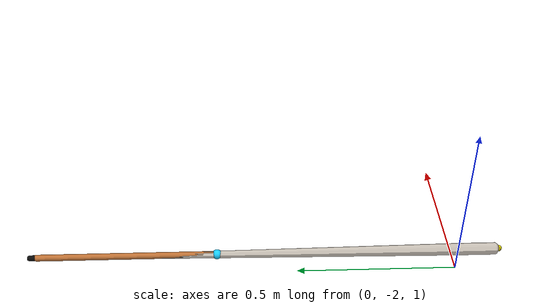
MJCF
<mujoco>
  <asset>
    <material name="dynamic_cue_wood_mat" rgba="0.72 0.43 0.20 1"/>
    <material name="dynamic_cue_tip_mat" rgba="0.03 0.03 0.028 1"/>
    <texture name="sketchfab_cue_texture" type="2d" file="../../TriWorlds-snooker/assets/cue/sketchfab_pool_table_traditional/cue_mat_baseColor.png"/>
    <material name="sketchfab_cue_mat" texture="sketchfab_cue_texture" rgba="1 1 1 1" reflectance="0.08"/>
    <mesh name="sketchfab_cue_visual" file="../assets/cue/sketchfab_pool_table_traditional/pool_cue_visual_local.obj"/>
  </asset>

  <worldbody>
    <body name="cue_body" pos="0 -1.3996 1.0785" quat="0.7071067812 0 0 0.7071067812">
      <!-- Cue local +X points from butt to tip. Left hand site is closer to
           the cue ball; right hand site is farther back for the power stroke. -->
      <freejoint name="cue_free"/>
      <geom name="cue_visual_mesh" type="mesh" mesh="sketchfab_cue_visual"
            material="sketchfab_cue_mat" contype="0" conaffinity="0" density="0"/>
      <geom name="cue_shaft" type="capsule" fromto="-0.725 0 0 0.705 0 0" size="0.010"
            mass="0.50" material="dynamic_cue_wood_mat"
            contype="0" conaffinity="0" condim="3"
            friction="0 0 0"/>
      <geom name="cue_tip" type="capsule" fromto="0.705 0 0 0.725 0 0" size="0.009"
            mass="0.03" material="dynamic_cue_tip_mat"
            contype="1" conaffinity="1" condim="6" priority="3"
            friction="0.35 0.008 0.0001" solref="-5e6 -300"
            solimp="0.95 0.99 0.001"/>
      <site name="cue_tip_site" pos="0.725 0 0" size="0.006" rgba="0 1 0 1"/>
      <site name="cue_axis_site" pos="0 0 0" size="0.004" rgba="0 0.4 1 1"/>
      <site name="cue_left_grip_site" pos="0.150333 0 0" size="0.015" rgba="0.1 0.8 1 1"/>
      <site name="cue_right_grip_site" pos="-0.349667 0 0" size="0.015" rgba="1 0.35 0.1 1"/>
      <site name="cue_back_site" pos="-0.725 0 0" size="0.010" rgba="1 1 0 1"/>
    </body>
  </worldbody>
</mujoco>
